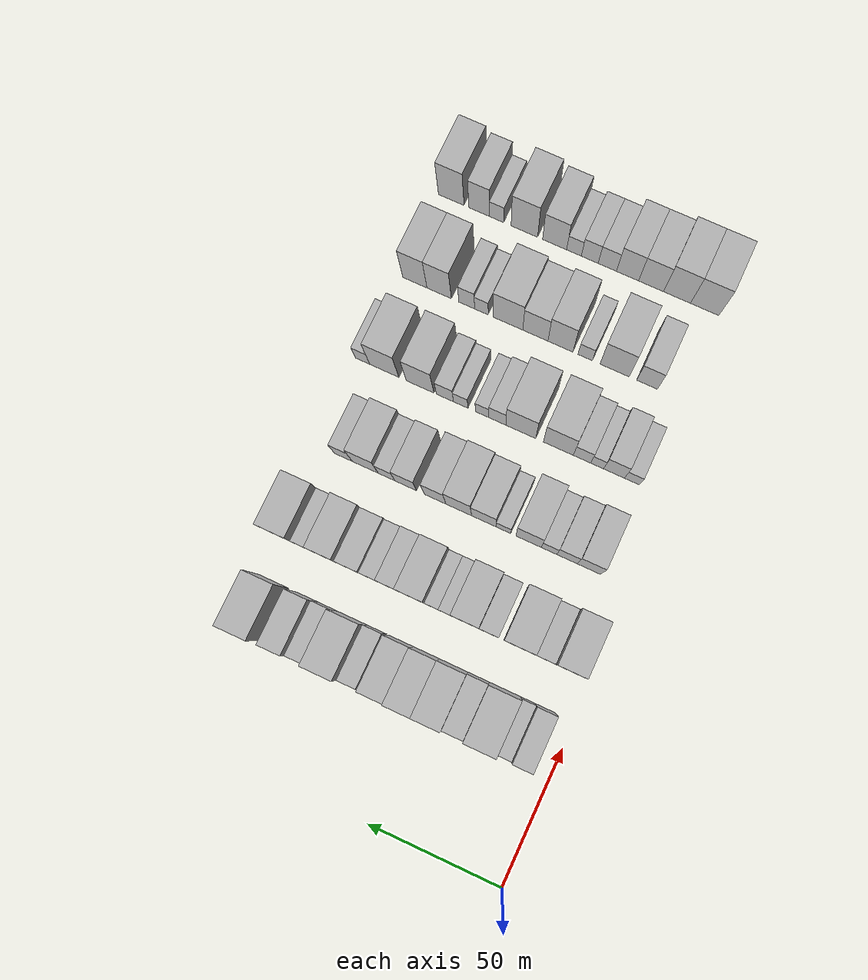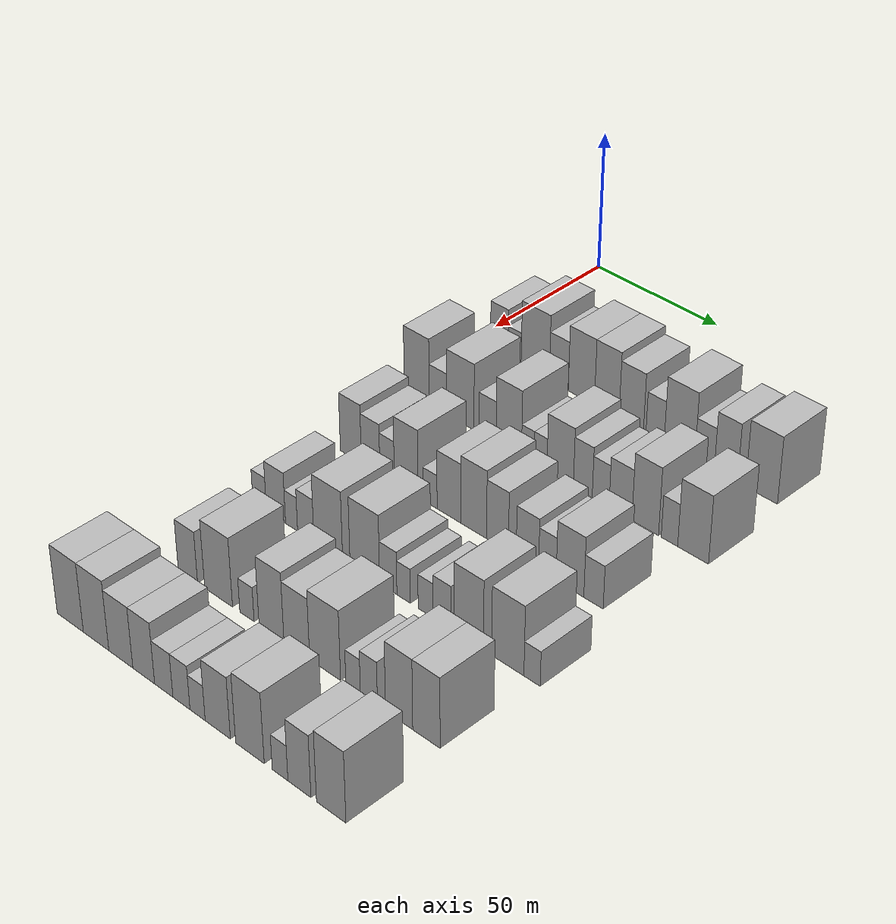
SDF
<sdf version="1.6">
 <world name="default">
  <model name="building_53">
   <static>1</static>
   <pose>50.0000 10.9325 0 0.000000 0.000000 0.000000</pose>
   <link name="link">
    <pose>0 0 9.00 0 0 0</pose>
    <collision name="collision"><geometry><box><size>20.0000 7.5967 18.0000</size></box></geometry></collision>
    <visual name="visual">
     <cast_shadows>0</cast_shadows>
     <geometry><box><size>20.0000 7.5967 18.0000</size></box></geometry>
     <material>
      <script>
       <uri>model://HANNAS_wall/materials/scripts</uri>
       <uri>model://HANNAS_wall/materials/textures</uri>
       <name>vrc/HANNAS_wall</name>
      </script>
     </material>
    </visual>
   </link>
  </model>
  <model name="building_54">
   <static>1</static>
   <pose>50.0000 17.5193 0 0.000000 0.000000 0.000000</pose>
   <link name="link">
    <pose>0 0 6.00 0 0 0</pose>
    <collision name="collision"><geometry><box><size>20.0000 5.5769 12.0000</size></box></geometry></collision>
    <visual name="visual">
     <cast_shadows>0</cast_shadows>
     <geometry><box><size>20.0000 5.5769 12.0000</size></box></geometry>
     <material>
      <script>
       <uri>model://HANNAS_wall/materials/scripts</uri>
       <uri>model://HANNAS_wall/materials/textures</uri>
       <name>vrc/HANNAS_wall</name>
      </script>
     </material>
    </visual>
   </link>
  </model>
  <model name="building_55">
   <static>1</static>
   <pose>50.0000 26.2541 0 0.000000 0.000000 0.000000</pose>
   <link name="link">
    <pose>0 0 12.00 0 0 0</pose>
    <collision name="collision"><geometry><box><size>20.0000 11.8926 24.0000</size></box></geometry></collision>
    <visual name="visual">
     <cast_shadows>0</cast_shadows>
     <geometry><box><size>20.0000 11.8926 24.0000</size></box></geometry>
     <material>
      <script>
       <uri>model://HANNAS_wall/materials/scripts</uri>
       <uri>model://HANNAS_wall/materials/textures</uri>
       <name>vrc/HANNAS_wall</name>
      </script>
     </material>
    </visual>
   </link>
  </model>
  <model name="building_56">
   <static>1</static>
   <pose>50.0000 36.1380 0 0.000000 0.000000 0.000000</pose>
   <link name="link">
    <pose>0 0 9.00 0 0 0</pose>
    <collision name="collision"><geometry><box><size>20.0000 7.8752 18.0000</size></box></geometry></collision>
    <visual name="visual">
     <cast_shadows>0</cast_shadows>
     <geometry><box><size>20.0000 7.8752 18.0000</size></box></geometry>
     <material>
      <script>
       <uri>model://HANNAS_wall/materials/scripts</uri>
       <uri>model://HANNAS_wall/materials/textures</uri>
       <name>vrc/HANNAS_wall</name>
      </script>
     </material>
    </visual>
   </link>
  </model>
  <model name="building_57">
   <static>1</static>
   <pose>50.0000 45.4287 0 0.000000 0.000000 0.000000</pose>
   <link name="link">
    <pose>0 0 12.00 0 0 0</pose>
    <collision name="collision"><geometry><box><size>20.0000 10.7063 24.0000</size></box></geometry></collision>
    <visual name="visual">
     <cast_shadows>0</cast_shadows>
     <geometry><box><size>20.0000 10.7063 24.0000</size></box></geometry>
     <material>
      <script>
       <uri>model://HANNAS_wall/materials/scripts</uri>
       <uri>model://HANNAS_wall/materials/textures</uri>
       <name>vrc/HANNAS_wall</name>
      </script>
     </material>
    </visual>
   </link>
  </model>
  <model name="building_58">
   <static>1</static>
   <pose>50.0000 55.7547 0 0.000000 0.000000 0.000000</pose>
   <link name="link">
    <pose>0 0 12.00 0 0 0</pose>
    <collision name="collision"><geometry><box><size>20.0000 9.9456 24.0000</size></box></geometry></collision>
    <visual name="visual">
     <cast_shadows>0</cast_shadows>
     <geometry><box><size>20.0000 9.9456 24.0000</size></box></geometry>
     <material>
      <script>
       <uri>model://HANNAS_wall/materials/scripts</uri>
       <uri>model://HANNAS_wall/materials/textures</uri>
       <name>vrc/HANNAS_wall</name>
      </script>
     </material>
    </visual>
   </link>
  </model>
  <model name="building_59">
   <static>1</static>
   <pose>50.0000 65.5780 0 0.000000 0.000000 0.000000</pose>
   <link name="link">
    <pose>0 0 10.50 0 0 0</pose>
    <collision name="collision"><geometry><box><size>20.0000 9.7010 21.0000</size></box></geometry></collision>
    <visual name="visual">
     <cast_shadows>0</cast_shadows>
     <geometry><box><size>20.0000 9.7010 21.0000</size></box></geometry>
     <material>
      <script>
       <uri>model://HANNAS_wall/materials/scripts</uri>
       <uri>model://HANNAS_wall/materials/textures</uri>
       <name>vrc/HANNAS_wall</name>
      </script>
     </material>
    </visual>
   </link>
  </model>
  <model name="building_60">
   <static>1</static>
   <pose>50.0000 74.9894 0 0.000000 0.000000 0.000000</pose>
   <link name="link">
    <pose>0 0 7.50 0 0 0</pose>
    <collision name="collision"><geometry><box><size>20.0000 7.1218 15.0000</size></box></geometry></collision>
    <visual name="visual">
     <cast_shadows>0</cast_shadows>
     <geometry><box><size>20.0000 7.1218 15.0000</size></box></geometry>
     <material>
      <script>
       <uri>model://HANNAS_wall/materials/scripts</uri>
       <uri>model://HANNAS_wall/materials/textures</uri>
       <name>vrc/HANNAS_wall</name>
      </script>
     </material>
    </visual>
   </link>
  </model>
  <model name="building_61">
   <static>1</static>
   <pose>50.0000 84.4552 0 0.000000 0.000000 0.000000</pose>
   <link name="link">
    <pose>0 0 12.00 0 0 0</pose>
    <collision name="collision"><geometry><box><size>20.0000 11.8098 24.0000</size></box></geometry></collision>
    <visual name="visual">
     <cast_shadows>0</cast_shadows>
     <geometry><box><size>20.0000 11.8098 24.0000</size></box></geometry>
     <material>
      <script>
       <uri>model://HANNAS_wall/materials/scripts</uri>
       <uri>model://HANNAS_wall/materials/textures</uri>
       <name>vrc/HANNAS_wall</name>
      </script>
     </material>
    </visual>
   </link>
  </model>
  <model name="building_62">
   <static>1</static>
   <pose>50.0000 94.0692 0 0.000000 0.000000 0.000000</pose>
   <link name="link">
    <pose>0 0 7.50 0 0 0</pose>
    <collision name="collision"><geometry><box><size>20.0000 7.4182 15.0000</size></box></geometry></collision>
    <visual name="visual">
     <cast_shadows>0</cast_shadows>
     <geometry><box><size>20.0000 7.4182 15.0000</size></box></geometry>
     <material>
      <script>
       <uri>model://HANNAS_wall/materials/scripts</uri>
       <uri>model://HANNAS_wall/materials/textures</uri>
       <name>vrc/HANNAS_wall</name>
      </script>
     </material>
    </visual>
   </link>
  </model>
  <model name="building_63">
   <static>1</static>
   <pose>50.0000 102.1355 0 0.000000 0.000000 0.000000</pose>
   <link name="link">
    <pose>0 0 10.50 0 0 0</pose>
    <collision name="collision"><geometry><box><size>20.0000 8.7144 21.0000</size></box></geometry></collision>
    <visual name="visual">
     <cast_shadows>0</cast_shadows>
     <geometry><box><size>20.0000 8.7144 21.0000</size></box></geometry>
     <material>
      <script>
       <uri>model://HANNAS_wall/materials/scripts</uri>
       <uri>model://HANNAS_wall/materials/textures</uri>
       <name>vrc/HANNAS_wall</name>
      </script>
     </material>
    </visual>
   </link>
  </model>
  <model name="building_64">
   <static>1</static>
   <pose>50.0000 115.3629 0 0.000000 0.000000 0.000000</pose>
   <link name="link">
    <pose>0 0 12.00 0 0 0</pose>
    <collision name="collision"><geometry><box><size>20.0000 11.7403 24.0000</size></box></geometry></collision>
    <visual name="visual">
     <cast_shadows>0</cast_shadows>
     <geometry><box><size>20.0000 11.7403 24.0000</size></box></geometry>
     <material>
      <script>
       <uri>model://HANNAS_wall/materials/scripts</uri>
       <uri>model://HANNAS_wall/materials/textures</uri>
       <name>vrc/HANNAS_wall</name>
      </script>
     </material>
    </visual>
   </link>
  </model>
  <model name="building_173">
   <static>1</static>
   <pose>85.0000 9.2073 0 0.000000 0.000000 0.000000</pose>
   <link name="link">
    <pose>0 0 12.00 0 0 0</pose>
    <collision name="collision"><geometry><box><size>20.0000 10.7106 24.0000</size></box></geometry></collision>
    <visual name="visual">
     <cast_shadows>0</cast_shadows>
     <geometry><box><size>20.0000 10.7106 24.0000</size></box></geometry>
     <material>
      <script>
       <uri>model://HANNAS_wall/materials/scripts</uri>
       <uri>model://HANNAS_wall/materials/textures</uri>
       <name>vrc/HANNAS_wall</name>
      </script>
     </material>
    </visual>
   </link>
  </model>
  <model name="building_174">
   <static>1</static>
   <pose>85.0000 18.2733 0 0.000000 0.000000 0.000000</pose>
   <link name="link">
    <pose>0 0 7.50 0 0 0</pose>
    <collision name="collision"><geometry><box><size>20.0000 7.4213 15.0000</size></box></geometry></collision>
    <visual name="visual">
     <cast_shadows>0</cast_shadows>
     <geometry><box><size>20.0000 7.4213 15.0000</size></box></geometry>
     <material>
      <script>
       <uri>model://HANNAS_wall/materials/scripts</uri>
       <uri>model://HANNAS_wall/materials/textures</uri>
       <name>vrc/HANNAS_wall</name>
      </script>
     </material>
    </visual>
   </link>
  </model>
  <model name="building_175">
   <static>1</static>
   <pose>85.0000 27.7374 0 0.000000 0.000000 0.000000</pose>
   <link name="link">
    <pose>0 0 12.00 0 0 0</pose>
    <collision name="collision"><geometry><box><size>20.0000 11.5070 24.0000</size></box></geometry></collision>
    <visual name="visual">
     <cast_shadows>0</cast_shadows>
     <geometry><box><size>20.0000 11.5070 24.0000</size></box></geometry>
     <material>
      <script>
       <uri>model://HANNAS_wall/materials/scripts</uri>
       <uri>model://HANNAS_wall/materials/textures</uri>
       <name>vrc/HANNAS_wall</name>
      </script>
     </material>
    </visual>
   </link>
  </model>
  <model name="building_176">
   <static>1</static>
   <pose>85.0000 39.0629 0 0.000000 0.000000 0.000000</pose>
   <link name="link">
    <pose>0 0 7.50 0 0 0</pose>
    <collision name="collision"><geometry><box><size>20.0000 7.1439 15.0000</size></box></geometry></collision>
    <visual name="visual">
     <cast_shadows>0</cast_shadows>
     <geometry><box><size>20.0000 7.1439 15.0000</size></box></geometry>
     <material>
      <script>
       <uri>model://HANNAS_wall/materials/scripts</uri>
       <uri>model://HANNAS_wall/materials/textures</uri>
       <name>vrc/HANNAS_wall</name>
      </script>
     </material>
    </visual>
   </link>
  </model>
  <model name="building_177">
   <static>1</static>
   <pose>85.0000 47.8035 0 0.000000 0.000000 0.000000</pose>
   <link name="link">
    <pose>0 0 12.00 0 0 0</pose>
    <collision name="collision"><geometry><box><size>20.0000 10.3373 24.0000</size></box></geometry></collision>
    <visual name="visual">
     <cast_shadows>0</cast_shadows>
     <geometry><box><size>20.0000 10.3373 24.0000</size></box></geometry>
     <material>
      <script>
       <uri>model://HANNAS_wall/materials/scripts</uri>
       <uri>model://HANNAS_wall/materials/textures</uri>
       <name>vrc/HANNAS_wall</name>
      </script>
     </material>
    </visual>
   </link>
  </model>
  <model name="building_178">
   <static>1</static>
   <pose>85.0000 55.4896 0 0.000000 0.000000 0.000000</pose>
   <link name="link">
    <pose>0 0 6.00 0 0 0</pose>
    <collision name="collision"><geometry><box><size>20.0000 5.0350 12.0000</size></box></geometry></collision>
    <visual name="visual">
     <cast_shadows>0</cast_shadows>
     <geometry><box><size>20.0000 5.0350 12.0000</size></box></geometry>
     <material>
      <script>
       <uri>model://HANNAS_wall/materials/scripts</uri>
       <uri>model://HANNAS_wall/materials/textures</uri>
       <name>vrc/HANNAS_wall</name>
      </script>
     </material>
    </visual>
   </link>
  </model>
  <model name="building_179">
   <static>1</static>
   <pose>85.0000 60.5890 0 0.000000 0.000000 0.000000</pose>
   <link name="link">
    <pose>0 0 6.00 0 0 0</pose>
    <collision name="collision"><geometry><box><size>20.0000 5.1638 12.0000</size></box></geometry></collision>
    <visual name="visual">
     <cast_shadows>0</cast_shadows>
     <geometry><box><size>20.0000 5.1638 12.0000</size></box></geometry>
     <material>
      <script>
       <uri>model://HANNAS_wall/materials/scripts</uri>
       <uri>model://HANNAS_wall/materials/textures</uri>
       <name>vrc/HANNAS_wall</name>
      </script>
     </material>
    </visual>
   </link>
  </model>
  <model name="building_180">
   <static>1</static>
   <pose>85.0000 68.3815 0 0.000000 0.000000 0.000000</pose>
   <link name="link">
    <pose>0 0 10.50 0 0 0</pose>
    <collision name="collision"><geometry><box><size>20.0000 10.4212 21.0000</size></box></geometry></collision>
    <visual name="visual">
     <cast_shadows>0</cast_shadows>
     <geometry><box><size>20.0000 10.4212 21.0000</size></box></geometry>
     <material>
      <script>
       <uri>model://HANNAS_wall/materials/scripts</uri>
       <uri>model://HANNAS_wall/materials/textures</uri>
       <name>vrc/HANNAS_wall</name>
      </script>
     </material>
    </visual>
   </link>
  </model>
  <model name="building_181">
   <static>1</static>
   <pose>85.0000 77.2573 0 0.000000 0.000000 0.000000</pose>
   <link name="link">
    <pose>0 0 9.00 0 0 0</pose>
    <collision name="collision"><geometry><box><size>20.0000 7.3304 18.0000</size></box></geometry></collision>
    <visual name="visual">
     <cast_shadows>0</cast_shadows>
     <geometry><box><size>20.0000 7.3304 18.0000</size></box></geometry>
     <material>
      <script>
       <uri>model://HANNAS_wall/materials/scripts</uri>
       <uri>model://HANNAS_wall/materials/textures</uri>
       <name>vrc/HANNAS_wall</name>
      </script>
     </material>
    </visual>
   </link>
  </model>
  <model name="building_182">
   <static>1</static>
   <pose>85.0000 84.1642 0 0.000000 0.000000 0.000000</pose>
   <link name="link">
    <pose>0 0 7.50 0 0 0</pose>
    <collision name="collision"><geometry><box><size>20.0000 6.4835 15.0000</size></box></geometry></collision>
    <visual name="visual">
     <cast_shadows>0</cast_shadows>
     <geometry><box><size>20.0000 6.4835 15.0000</size></box></geometry>
     <material>
      <script>
       <uri>model://HANNAS_wall/materials/scripts</uri>
       <uri>model://HANNAS_wall/materials/textures</uri>
       <name>vrc/HANNAS_wall</name>
      </script>
     </material>
    </visual>
   </link>
  </model>
  <model name="building_183">
   <static>1</static>
   <pose>85.0000 91.7483 0 0.000000 0.000000 0.000000</pose>
   <link name="link">
    <pose>0 0 9.00 0 0 0</pose>
    <collision name="collision"><geometry><box><size>20.0000 8.6847 18.0000</size></box></geometry></collision>
    <visual name="visual">
     <cast_shadows>0</cast_shadows>
     <geometry><box><size>20.0000 8.6847 18.0000</size></box></geometry>
     <material>
      <script>
       <uri>model://HANNAS_wall/materials/scripts</uri>
       <uri>model://HANNAS_wall/materials/textures</uri>
       <name>vrc/HANNAS_wall</name>
      </script>
     </material>
    </visual>
   </link>
  </model>
  <model name="building_184">
   <static>1</static>
   <pose>85.0000 101.0694 0 0.000000 0.000000 0.000000</pose>
   <link name="link">
    <pose>0 0 12.00 0 0 0</pose>
    <collision name="collision"><geometry><box><size>20.0000 9.9575 24.0000</size></box></geometry></collision>
    <visual name="visual">
     <cast_shadows>0</cast_shadows>
     <geometry><box><size>20.0000 9.9575 24.0000</size></box></geometry>
     <material>
      <script>
       <uri>model://HANNAS_wall/materials/scripts</uri>
       <uri>model://HANNAS_wall/materials/textures</uri>
       <name>vrc/HANNAS_wall</name>
      </script>
     </material>
    </visual>
   </link>
  </model>
  <model name="building_185">
   <static>1</static>
   <pose>85.0000 110.0752 0 0.000000 0.000000 0.000000</pose>
   <link name="link">
    <pose>0 0 7.50 0 0 0</pose>
    <collision name="collision"><geometry><box><size>20.0000 6.0540 15.0000</size></box></geometry></collision>
    <visual name="visual">
     <cast_shadows>0</cast_shadows>
     <geometry><box><size>20.0000 6.0540 15.0000</size></box></geometry>
     <material>
      <script>
       <uri>model://HANNAS_wall/materials/scripts</uri>
       <uri>model://HANNAS_wall/materials/textures</uri>
       <name>vrc/HANNAS_wall</name>
      </script>
     </material>
    </visual>
   </link>
  </model>
  <model name="building_186">
   <static>1</static>
   <pose>85.0000 118.7053 0 0.000000 0.000000 0.000000</pose>
   <link name="link">
    <pose>0 0 12.00 0 0 0</pose>
    <collision name="collision"><geometry><box><size>20.0000 11.2061 24.0000</size></box></geometry></collision>
    <visual name="visual">
     <cast_shadows>0</cast_shadows>
     <geometry><box><size>20.0000 11.2061 24.0000</size></box></geometry>
     <material>
      <script>
       <uri>model://HANNAS_wall/materials/scripts</uri>
       <uri>model://HANNAS_wall/materials/textures</uri>
       <name>vrc/HANNAS_wall</name>
      </script>
     </material>
    </visual>
   </link>
  </model>
  <model name="building_297">
   <static>1</static>
   <pose>120.0000 16.6069 0 0.000000 0.000000 0.000000</pose>
   <link name="link">
    <pose>0 0 10.50 0 0 0</pose>
    <collision name="collision"><geometry><box><size>20.0000 8.9394 21.0000</size></box></geometry></collision>
    <visual name="visual">
     <cast_shadows>0</cast_shadows>
     <geometry><box><size>20.0000 8.9394 21.0000</size></box></geometry>
     <material>
      <script>
       <uri>model://HANNAS_wall/materials/scripts</uri>
       <uri>model://HANNAS_wall/materials/textures</uri>
       <name>vrc/HANNAS_wall</name>
      </script>
     </material>
    </visual>
   </link>
  </model>
  <model name="building_298">
   <static>1</static>
   <pose>120.0000 24.9876 0 0.000000 0.000000 0.000000</pose>
   <link name="link">
    <pose>0 0 9.00 0 0 0</pose>
    <collision name="collision"><geometry><box><size>20.0000 7.8220 18.0000</size></box></geometry></collision>
    <visual name="visual">
     <cast_shadows>0</cast_shadows>
     <geometry><box><size>20.0000 7.8220 18.0000</size></box></geometry>
     <material>
      <script>
       <uri>model://HANNAS_wall/materials/scripts</uri>
       <uri>model://HANNAS_wall/materials/textures</uri>
       <name>vrc/HANNAS_wall</name>
      </script>
     </material>
    </visual>
   </link>
  </model>
  <model name="building_299">
   <static>1</static>
   <pose>120.0000 31.9144 0 0.000000 0.000000 0.000000</pose>
   <link name="link">
    <pose>0 0 7.50 0 0 0</pose>
    <collision name="collision"><geometry><box><size>20.0000 6.0315 15.0000</size></box></geometry></collision>
    <visual name="visual">
     <cast_shadows>0</cast_shadows>
     <geometry><box><size>20.0000 6.0315 15.0000</size></box></geometry>
     <material>
      <script>
       <uri>model://HANNAS_wall/materials/scripts</uri>
       <uri>model://HANNAS_wall/materials/textures</uri>
       <name>vrc/HANNAS_wall</name>
      </script>
     </material>
    </visual>
   </link>
  </model>
  <model name="building_300">
   <static>1</static>
   <pose>120.0000 39.8131 0 0.000000 0.000000 0.000000</pose>
   <link name="link">
    <pose>0 0 12.00 0 0 0</pose>
    <collision name="collision"><geometry><box><size>20.0000 9.7660 24.0000</size></box></geometry></collision>
    <visual name="visual">
     <cast_shadows>0</cast_shadows>
     <geometry><box><size>20.0000 9.7660 24.0000</size></box></geometry>
     <material>
      <script>
       <uri>model://HANNAS_wall/materials/scripts</uri>
       <uri>model://HANNAS_wall/materials/textures</uri>
       <name>vrc/HANNAS_wall</name>
      </script>
     </material>
    </visual>
   </link>
  </model>
  <model name="building_301">
   <static>1</static>
   <pose>120.0000 49.5465 0 0.000000 0.000000 0.000000</pose>
   <link name="link">
    <pose>0 0 6.00 0 0 0</pose>
    <collision name="collision"><geometry><box><size>20.0000 5.7008 12.0000</size></box></geometry></collision>
    <visual name="visual">
     <cast_shadows>0</cast_shadows>
     <geometry><box><size>20.0000 5.7008 12.0000</size></box></geometry>
     <material>
      <script>
       <uri>model://HANNAS_wall/materials/scripts</uri>
       <uri>model://HANNAS_wall/materials/textures</uri>
       <name>vrc/HANNAS_wall</name>
      </script>
     </material>
    </visual>
   </link>
  </model>
  <model name="building_302">
   <static>1</static>
   <pose>120.0000 57.1615 0 0.000000 0.000000 0.000000</pose>
   <link name="link">
    <pose>0 0 10.50 0 0 0</pose>
    <collision name="collision"><geometry><box><size>20.0000 9.5293 21.0000</size></box></geometry></collision>
    <visual name="visual">
     <cast_shadows>0</cast_shadows>
     <geometry><box><size>20.0000 9.5293 21.0000</size></box></geometry>
     <material>
      <script>
       <uri>model://HANNAS_wall/materials/scripts</uri>
       <uri>model://HANNAS_wall/materials/textures</uri>
       <name>vrc/HANNAS_wall</name>
      </script>
     </material>
    </visual>
   </link>
  </model>
  <model name="building_303">
   <static>1</static>
   <pose>120.0000 66.9779 0 0.000000 0.000000 0.000000</pose>
   <link name="link">
    <pose>0 0 12.00 0 0 0</pose>
    <collision name="collision"><geometry><box><size>20.0000 10.1033 24.0000</size></box></geometry></collision>
    <visual name="visual">
     <cast_shadows>0</cast_shadows>
     <geometry><box><size>20.0000 10.1033 24.0000</size></box></geometry>
     <material>
      <script>
       <uri>model://HANNAS_wall/materials/scripts</uri>
       <uri>model://HANNAS_wall/materials/textures</uri>
       <name>vrc/HANNAS_wall</name>
      </script>
     </material>
    </visual>
   </link>
  </model>
  <model name="building_304">
   <static>1</static>
   <pose>120.0000 76.2631 0 0.000000 0.000000 0.000000</pose>
   <link name="link">
    <pose>0 0 10.50 0 0 0</pose>
    <collision name="collision"><geometry><box><size>20.0000 8.4672 21.0000</size></box></geometry></collision>
    <visual name="visual">
     <cast_shadows>0</cast_shadows>
     <geometry><box><size>20.0000 8.4672 21.0000</size></box></geometry>
     <material>
      <script>
       <uri>model://HANNAS_wall/materials/scripts</uri>
       <uri>model://HANNAS_wall/materials/textures</uri>
       <name>vrc/HANNAS_wall</name>
      </script>
     </material>
    </visual>
   </link>
  </model>
  <model name="building_305">
   <static>1</static>
   <pose>120.0000 87.7587 0 0.000000 0.000000 0.000000</pose>
   <link name="link">
    <pose>0 0 9.00 0 0 0</pose>
    <collision name="collision"><geometry><box><size>20.0000 8.5241 18.0000</size></box></geometry></collision>
    <visual name="visual">
     <cast_shadows>0</cast_shadows>
     <geometry><box><size>20.0000 8.5241 18.0000</size></box></geometry>
     <material>
      <script>
       <uri>model://HANNAS_wall/materials/scripts</uri>
       <uri>model://HANNAS_wall/materials/textures</uri>
       <name>vrc/HANNAS_wall</name>
      </script>
     </material>
    </visual>
   </link>
  </model>
  <model name="building_306">
   <static>1</static>
   <pose>120.0000 95.3101 0 0.000000 0.000000 0.000000</pose>
   <link name="link">
    <pose>0 0 7.50 0 0 0</pose>
    <collision name="collision"><geometry><box><size>20.0000 6.5787 15.0000</size></box></geometry></collision>
    <visual name="visual">
     <cast_shadows>0</cast_shadows>
     <geometry><box><size>20.0000 6.5787 15.0000</size></box></geometry>
     <material>
      <script>
       <uri>model://HANNAS_wall/materials/scripts</uri>
       <uri>model://HANNAS_wall/materials/textures</uri>
       <name>vrc/HANNAS_wall</name>
      </script>
     </material>
    </visual>
   </link>
  </model>
  <model name="building_307">
   <static>1</static>
   <pose>120.0000 103.7476 0 0.000000 0.000000 0.000000</pose>
   <link name="link">
    <pose>0 0 10.50 0 0 0</pose>
    <collision name="collision"><geometry><box><size>20.0000 10.2961 21.0000</size></box></geometry></collision>
    <visual name="visual">
     <cast_shadows>0</cast_shadows>
     <geometry><box><size>20.0000 10.2961 21.0000</size></box></geometry>
     <material>
      <script>
       <uri>model://HANNAS_wall/materials/scripts</uri>
       <uri>model://HANNAS_wall/materials/textures</uri>
       <name>vrc/HANNAS_wall</name>
      </script>
     </material>
    </visual>
   </link>
  </model>
  <model name="building_308">
   <static>1</static>
   <pose>120.0000 112.4360 0 0.000000 0.000000 0.000000</pose>
   <link name="link">
    <pose>0 0 7.50 0 0 0</pose>
    <collision name="collision"><geometry><box><size>20.0000 7.0806 15.0000</size></box></geometry></collision>
    <visual name="visual">
     <cast_shadows>0</cast_shadows>
     <geometry><box><size>20.0000 7.0806 15.0000</size></box></geometry>
     <material>
      <script>
       <uri>model://HANNAS_wall/materials/scripts</uri>
       <uri>model://HANNAS_wall/materials/textures</uri>
       <name>vrc/HANNAS_wall</name>
      </script>
     </material>
    </visual>
   </link>
  </model>
  <model name="building_413">
   <static>1</static>
   <pose>155.0000 15.1623 0 0.000000 0.000000 0.000000</pose>
   <link name="link">
    <pose>0 0 6.00 0 0 0</pose>
    <collision name="collision"><geometry><box><size>20.0000 5.7543 12.0000</size></box></geometry></collision>
    <visual name="visual">
     <cast_shadows>0</cast_shadows>
     <geometry><box><size>20.0000 5.7543 12.0000</size></box></geometry>
     <material>
      <script>
       <uri>model://HANNAS_wall/materials/scripts</uri>
       <uri>model://HANNAS_wall/materials/textures</uri>
       <name>vrc/HANNAS_wall</name>
      </script>
     </material>
    </visual>
   </link>
  </model>
  <model name="building_414">
   <static>1</static>
   <pose>155.0000 22.1017 0 0.000000 0.000000 0.000000</pose>
   <link name="link">
    <pose>0 0 9.00 0 0 0</pose>
    <collision name="collision"><geometry><box><size>20.0000 8.1246 18.0000</size></box></geometry></collision>
    <visual name="visual">
     <cast_shadows>0</cast_shadows>
     <geometry><box><size>20.0000 8.1246 18.0000</size></box></geometry>
     <material>
      <script>
       <uri>model://HANNAS_wall/materials/scripts</uri>
       <uri>model://HANNAS_wall/materials/textures</uri>
       <name>vrc/HANNAS_wall</name>
      </script>
     </material>
    </visual>
   </link>
  </model>
  <model name="building_415">
   <static>1</static>
   <pose>155.0000 28.6937 0 0.000000 0.000000 0.000000</pose>
   <link name="link">
    <pose>0 0 6.00 0 0 0</pose>
    <collision name="collision"><geometry><box><size>20.0000 5.0593 12.0000</size></box></geometry></collision>
    <visual name="visual">
     <cast_shadows>0</cast_shadows>
     <geometry><box><size>20.0000 5.0593 12.0000</size></box></geometry>
     <material>
      <script>
       <uri>model://HANNAS_wall/materials/scripts</uri>
       <uri>model://HANNAS_wall/materials/textures</uri>
       <name>vrc/HANNAS_wall</name>
      </script>
     </material>
    </visual>
   </link>
  </model>
  <model name="building_416">
   <static>1</static>
   <pose>155.0000 34.6225 0 0.000000 0.000000 0.000000</pose>
   <link name="link">
    <pose>0 0 7.50 0 0 0</pose>
    <collision name="collision"><geometry><box><size>20.0000 6.7983 15.0000</size></box></geometry></collision>
    <visual name="visual">
     <cast_shadows>0</cast_shadows>
     <geometry><box><size>20.0000 6.7983 15.0000</size></box></geometry>
     <material>
      <script>
       <uri>model://HANNAS_wall/materials/scripts</uri>
       <uri>model://HANNAS_wall/materials/textures</uri>
       <name>vrc/HANNAS_wall</name>
      </script>
     </material>
    </visual>
   </link>
  </model>
  <model name="building_417">
   <static>1</static>
   <pose>155.0000 43.8873 0 0.000000 0.000000 0.000000</pose>
   <link name="link">
    <pose>0 0 12.00 0 0 0</pose>
    <collision name="collision"><geometry><box><size>20.0000 11.7314 24.0000</size></box></geometry></collision>
    <visual name="visual">
     <cast_shadows>0</cast_shadows>
     <geometry><box><size>20.0000 11.7314 24.0000</size></box></geometry>
     <material>
      <script>
       <uri>model://HANNAS_wall/materials/scripts</uri>
       <uri>model://HANNAS_wall/materials/textures</uri>
       <name>vrc/HANNAS_wall</name>
      </script>
     </material>
    </visual>
   </link>
  </model>
  <model name="building_418">
   <static>1</static>
   <pose>155.0000 58.6644 0 0.000000 0.000000 0.000000</pose>
   <link name="link">
    <pose>0 0 12.00 0 0 0</pose>
    <collision name="collision"><geometry><box><size>20.0000 11.8228 24.0000</size></box></geometry></collision>
    <visual name="visual">
     <cast_shadows>0</cast_shadows>
     <geometry><box><size>20.0000 11.8228 24.0000</size></box></geometry>
     <material>
      <script>
       <uri>model://HANNAS_wall/materials/scripts</uri>
       <uri>model://HANNAS_wall/materials/textures</uri>
       <name>vrc/HANNAS_wall</name>
      </script>
     </material>
    </visual>
   </link>
  </model>
  <model name="building_419">
   <static>1</static>
   <pose>155.0000 67.9554 0 0.000000 0.000000 0.000000</pose>
   <link name="link">
    <pose>0 0 7.50 0 0 0</pose>
    <collision name="collision"><geometry><box><size>20.0000 6.7591 15.0000</size></box></geometry></collision>
    <visual name="visual">
     <cast_shadows>0</cast_shadows>
     <geometry><box><size>20.0000 6.7591 15.0000</size></box></geometry>
     <material>
      <script>
       <uri>model://HANNAS_wall/materials/scripts</uri>
       <uri>model://HANNAS_wall/materials/textures</uri>
       <name>vrc/HANNAS_wall</name>
      </script>
     </material>
    </visual>
   </link>
  </model>
  <model name="building_420">
   <static>1</static>
   <pose>155.0000 73.9543 0 0.000000 0.000000 0.000000</pose>
   <link name="link">
    <pose>0 0 6.00 0 0 0</pose>
    <collision name="collision"><geometry><box><size>20.0000 5.2388 12.0000</size></box></geometry></collision>
    <visual name="visual">
     <cast_shadows>0</cast_shadows>
     <geometry><box><size>20.0000 5.2388 12.0000</size></box></geometry>
     <material>
      <script>
       <uri>model://HANNAS_wall/materials/scripts</uri>
       <uri>model://HANNAS_wall/materials/textures</uri>
       <name>vrc/HANNAS_wall</name>
      </script>
     </material>
    </visual>
   </link>
  </model>
  <model name="building_421">
   <static>1</static>
   <pose>155.0000 82.4547 0 0.000000 0.000000 0.000000</pose>
   <link name="link">
    <pose>0 0 6.00 0 0 0</pose>
    <collision name="collision"><geometry><box><size>20.0000 5.7619 12.0000</size></box></geometry></collision>
    <visual name="visual">
     <cast_shadows>0</cast_shadows>
     <geometry><box><size>20.0000 5.7619 12.0000</size></box></geometry>
     <material>
      <script>
       <uri>model://HANNAS_wall/materials/scripts</uri>
       <uri>model://HANNAS_wall/materials/textures</uri>
       <name>vrc/HANNAS_wall</name>
      </script>
     </material>
    </visual>
   </link>
  </model>
  <model name="building_422">
   <static>1</static>
   <pose>155.0000 88.7399 0 0.000000 0.000000 0.000000</pose>
   <link name="link">
    <pose>0 0 7.50 0 0 0</pose>
    <collision name="collision"><geometry><box><size>20.0000 6.8085 15.0000</size></box></geometry></collision>
    <visual name="visual">
     <cast_shadows>0</cast_shadows>
     <geometry><box><size>20.0000 6.8085 15.0000</size></box></geometry>
     <material>
      <script>
       <uri>model://HANNAS_wall/materials/scripts</uri>
       <uri>model://HANNAS_wall/materials/textures</uri>
       <name>vrc/HANNAS_wall</name>
      </script>
     </material>
    </visual>
   </link>
  </model>
  <model name="building_423">
   <static>1</static>
   <pose>155.0000 98.6700 0 0.000000 0.000000 0.000000</pose>
   <link name="link">
    <pose>0 0 12.00 0 0 0</pose>
    <collision name="collision"><geometry><box><size>20.0000 11.0516 24.0000</size></box></geometry></collision>
    <visual name="visual">
     <cast_shadows>0</cast_shadows>
     <geometry><box><size>20.0000 11.0516 24.0000</size></box></geometry>
     <material>
      <script>
       <uri>model://HANNAS_wall/materials/scripts</uri>
       <uri>model://HANNAS_wall/materials/textures</uri>
       <name>vrc/HANNAS_wall</name>
      </script>
     </material>
    </visual>
   </link>
  </model>
  <model name="building_424">
   <static>1</static>
   <pose>155.0000 113.0742 0 0.000000 0.000000 0.000000</pose>
   <link name="link">
    <pose>0 0 12.00 0 0 0</pose>
    <collision name="collision"><geometry><box><size>20.0000 11.7568 24.0000</size></box></geometry></collision>
    <visual name="visual">
     <cast_shadows>0</cast_shadows>
     <geometry><box><size>20.0000 11.7568 24.0000</size></box></geometry>
     <material>
      <script>
       <uri>model://HANNAS_wall/materials/scripts</uri>
       <uri>model://HANNAS_wall/materials/textures</uri>
       <name>vrc/HANNAS_wall</name>
      </script>
     </material>
    </visual>
   </link>
  </model>
  <model name="building_425">
   <static>1</static>
   <pose>155.0000 121.8730 0 0.000000 0.000000 0.000000</pose>
   <link name="link">
    <pose>0 0 6.00 0 0 0</pose>
    <collision name="collision"><geometry><box><size>20.0000 5.8407 12.0000</size></box></geometry></collision>
    <visual name="visual">
     <cast_shadows>0</cast_shadows>
     <geometry><box><size>20.0000 5.8407 12.0000</size></box></geometry>
     <material>
      <script>
       <uri>model://HANNAS_wall/materials/scripts</uri>
       <uri>model://HANNAS_wall/materials/textures</uri>
       <name>vrc/HANNAS_wall</name>
      </script>
     </material>
    </visual>
   </link>
  </model>
  <model name="building_543">
   <static>1</static>
   <pose>190.0000 24.2606 0 0.000000 0.000000 0.000000</pose>
   <link name="link">
    <pose>0 0 9.00 0 0 0</pose>
    <collision name="collision"><geometry><box><size>20.0000 8.1568 18.0000</size></box></geometry></collision>
    <visual name="visual">
     <cast_shadows>0</cast_shadows>
     <geometry><box><size>20.0000 8.1568 18.0000</size></box></geometry>
     <material>
      <script>
       <uri>model://HANNAS_wall/materials/scripts</uri>
       <uri>model://HANNAS_wall/materials/textures</uri>
       <name>vrc/HANNAS_wall</name>
      </script>
     </material>
    </visual>
   </link>
  </model>
  <model name="building_544">
   <static>1</static>
   <pose>190.0000 37.1027 0 0.000000 0.000000 0.000000</pose>
   <link name="link">
    <pose>0 0 12.00 0 0 0</pose>
    <collision name="collision"><geometry><box><size>20.0000 11.5274 24.0000</size></box></geometry></collision>
    <visual name="visual">
     <cast_shadows>0</cast_shadows>
     <geometry><box><size>20.0000 11.5274 24.0000</size></box></geometry>
     <material>
      <script>
       <uri>model://HANNAS_wall/materials/scripts</uri>
       <uri>model://HANNAS_wall/materials/textures</uri>
       <name>vrc/HANNAS_wall</name>
      </script>
     </material>
    </visual>
   </link>
  </model>
  <model name="building_545">
   <static>1</static>
   <pose>190.0000 48.7615 0 0.000000 0.000000 0.000000</pose>
   <link name="link">
    <pose>0 0 6.00 0 0 0</pose>
    <collision name="collision"><geometry><box><size>20.0000 5.7902 12.0000</size></box></geometry></collision>
    <visual name="visual">
     <cast_shadows>0</cast_shadows>
     <geometry><box><size>20.0000 5.7902 12.0000</size></box></geometry>
     <material>
      <script>
       <uri>model://HANNAS_wall/materials/scripts</uri>
       <uri>model://HANNAS_wall/materials/textures</uri>
       <name>vrc/HANNAS_wall</name>
      </script>
     </material>
    </visual>
   </link>
  </model>
  <model name="building_546">
   <static>1</static>
   <pose>190.0000 58.6334 0 0.000000 0.000000 0.000000</pose>
   <link name="link">
    <pose>0 0 12.00 0 0 0</pose>
    <collision name="collision"><geometry><box><size>20.0000 9.9536 24.0000</size></box></geometry></collision>
    <visual name="visual">
     <cast_shadows>0</cast_shadows>
     <geometry><box><size>20.0000 9.9536 24.0000</size></box></geometry>
     <material>
      <script>
       <uri>model://HANNAS_wall/materials/scripts</uri>
       <uri>model://HANNAS_wall/materials/textures</uri>
       <name>vrc/HANNAS_wall</name>
      </script>
     </material>
    </visual>
   </link>
  </model>
  <model name="building_547">
   <static>1</static>
   <pose>190.0000 68.6542 0 0.000000 0.000000 0.000000</pose>
   <link name="link">
    <pose>0 0 10.50 0 0 0</pose>
    <collision name="collision"><geometry><box><size>20.0000 10.0880 21.0000</size></box></geometry></collision>
    <visual name="visual">
     <cast_shadows>0</cast_shadows>
     <geometry><box><size>20.0000 10.0880 21.0000</size></box></geometry>
     <material>
      <script>
       <uri>model://HANNAS_wall/materials/scripts</uri>
       <uri>model://HANNAS_wall/materials/textures</uri>
       <name>vrc/HANNAS_wall</name>
      </script>
     </material>
    </visual>
   </link>
  </model>
  <model name="building_548">
   <static>1</static>
   <pose>190.0000 79.6599 0 0.000000 0.000000 0.000000</pose>
   <link name="link">
    <pose>0 0 12.00 0 0 0</pose>
    <collision name="collision"><geometry><box><size>20.0000 11.9235 24.0000</size></box></geometry></collision>
    <visual name="visual">
     <cast_shadows>0</cast_shadows>
     <geometry><box><size>20.0000 11.9235 24.0000</size></box></geometry>
     <material>
      <script>
       <uri>model://HANNAS_wall/materials/scripts</uri>
       <uri>model://HANNAS_wall/materials/textures</uri>
       <name>vrc/HANNAS_wall</name>
      </script>
     </material>
    </visual>
   </link>
  </model>
  <model name="building_549">
   <static>1</static>
   <pose>190.0000 90.3679 0 0.000000 0.000000 0.000000</pose>
   <link name="link">
    <pose>0 0 6.00 0 0 0</pose>
    <collision name="collision"><geometry><box><size>20.0000 5.4925 12.0000</size></box></geometry></collision>
    <visual name="visual">
     <cast_shadows>0</cast_shadows>
     <geometry><box><size>20.0000 5.4925 12.0000</size></box></geometry>
     <material>
      <script>
       <uri>model://HANNAS_wall/materials/scripts</uri>
       <uri>model://HANNAS_wall/materials/textures</uri>
       <name>vrc/HANNAS_wall</name>
      </script>
     </material>
    </visual>
   </link>
  </model>
  <model name="building_550">
   <static>1</static>
   <pose>190.0000 96.3111 0 0.000000 0.000000 0.000000</pose>
   <link name="link">
    <pose>0 0 7.50 0 0 0</pose>
    <collision name="collision"><geometry><box><size>20.0000 6.3938 15.0000</size></box></geometry></collision>
    <visual name="visual">
     <cast_shadows>0</cast_shadows>
     <geometry><box><size>20.0000 6.3938 15.0000</size></box></geometry>
     <material>
      <script>
       <uri>model://HANNAS_wall/materials/scripts</uri>
       <uri>model://HANNAS_wall/materials/textures</uri>
       <name>vrc/HANNAS_wall</name>
      </script>
     </material>
    </visual>
   </link>
  </model>
  <model name="building_551">
   <static>1</static>
   <pose>190.0000 107.4858 0 0.000000 0.000000 0.000000</pose>
   <link name="link">
    <pose>0 0 12.00 0 0 0</pose>
    <collision name="collision"><geometry><box><size>20.0000 9.9557 24.0000</size></box></geometry></collision>
    <visual name="visual">
     <cast_shadows>0</cast_shadows>
     <geometry><box><size>20.0000 9.9557 24.0000</size></box></geometry>
     <material>
      <script>
       <uri>model://HANNAS_wall/materials/scripts</uri>
       <uri>model://HANNAS_wall/materials/textures</uri>
       <name>vrc/HANNAS_wall</name>
      </script>
     </material>
    </visual>
   </link>
  </model>
  <model name="building_552">
   <static>1</static>
   <pose>190.0000 117.3971 0 0.000000 0.000000 0.000000</pose>
   <link name="link">
    <pose>0 0 12.00 0 0 0</pose>
    <collision name="collision"><geometry><box><size>20.0000 9.8668 24.0000</size></box></geometry></collision>
    <visual name="visual">
     <cast_shadows>0</cast_shadows>
     <geometry><box><size>20.0000 9.8668 24.0000</size></box></geometry>
     <material>
      <script>
       <uri>model://HANNAS_wall/materials/scripts</uri>
       <uri>model://HANNAS_wall/materials/textures</uri>
       <name>vrc/HANNAS_wall</name>
      </script>
     </material>
    </visual>
   </link>
  </model>
  <model name="building_670">
   <static>1</static>
   <pose>225.0000 16.2145 0 0.000000 0.000000 0.000000</pose>
   <link name="link">
    <pose>0 0 12.00 0 0 0</pose>
    <collision name="collision"><geometry><box><size>20.0000 11.2875 24.0000</size></box></geometry></collision>
    <visual name="visual">
     <cast_shadows>0</cast_shadows>
     <geometry><box><size>20.0000 11.2875 24.0000</size></box></geometry>
     <material>
      <script>
       <uri>model://HANNAS_wall/materials/scripts</uri>
       <uri>model://HANNAS_wall/materials/textures</uri>
       <name>vrc/HANNAS_wall</name>
      </script>
     </material>
    </visual>
   </link>
  </model>
  <model name="building_671">
   <static>1</static>
   <pose>225.0000 27.2447 0 0.000000 0.000000 0.000000</pose>
   <link name="link">
    <pose>0 0 12.00 0 0 0</pose>
    <collision name="collision"><geometry><box><size>20.0000 10.7729 24.0000</size></box></geometry></collision>
    <visual name="visual">
     <cast_shadows>0</cast_shadows>
     <geometry><box><size>20.0000 10.7729 24.0000</size></box></geometry>
     <material>
      <script>
       <uri>model://HANNAS_wall/materials/scripts</uri>
       <uri>model://HANNAS_wall/materials/textures</uri>
       <name>vrc/HANNAS_wall</name>
      </script>
     </material>
    </visual>
   </link>
  </model>
  <model name="building_672">
   <static>1</static>
   <pose>225.0000 37.6321 0 0.000000 0.000000 0.000000</pose>
   <link name="link">
    <pose>0 0 10.50 0 0 0</pose>
    <collision name="collision"><geometry><box><size>20.0000 10.0020 21.0000</size></box></geometry></collision>
    <visual name="visual">
     <cast_shadows>0</cast_shadows>
     <geometry><box><size>20.0000 10.0020 21.0000</size></box></geometry>
     <material>
      <script>
       <uri>model://HANNAS_wall/materials/scripts</uri>
       <uri>model://HANNAS_wall/materials/textures</uri>
       <name>vrc/HANNAS_wall</name>
      </script>
     </material>
    </visual>
   </link>
  </model>
  <model name="building_673">
   <static>1</static>
   <pose>225.0000 47.0960 0 0.000000 0.000000 0.000000</pose>
   <link name="link">
    <pose>0 0 10.50 0 0 0</pose>
    <collision name="collision"><geometry><box><size>20.0000 8.9259 21.0000</size></box></geometry></collision>
    <visual name="visual">
     <cast_shadows>0</cast_shadows>
     <geometry><box><size>20.0000 8.9259 21.0000</size></box></geometry>
     <material>
      <script>
       <uri>model://HANNAS_wall/materials/scripts</uri>
       <uri>model://HANNAS_wall/materials/textures</uri>
       <name>vrc/HANNAS_wall</name>
      </script>
     </material>
    </visual>
   </link>
  </model>
  <model name="building_674">
   <static>1</static>
   <pose>225.0000 55.2453 0 0.000000 0.000000 0.000000</pose>
   <link name="link">
    <pose>0 0 7.50 0 0 0</pose>
    <collision name="collision"><geometry><box><size>20.0000 7.3727 15.0000</size></box></geometry></collision>
    <visual name="visual">
     <cast_shadows>0</cast_shadows>
     <geometry><box><size>20.0000 7.3727 15.0000</size></box></geometry>
     <material>
      <script>
       <uri>model://HANNAS_wall/materials/scripts</uri>
       <uri>model://HANNAS_wall/materials/textures</uri>
       <name>vrc/HANNAS_wall</name>
      </script>
     </material>
    </visual>
   </link>
  </model>
  <model name="building_675">
   <static>1</static>
   <pose>225.0000 62.3264 0 0.000000 0.000000 0.000000</pose>
   <link name="link">
    <pose>0 0 7.50 0 0 0</pose>
    <collision name="collision"><geometry><box><size>20.0000 6.7895 15.0000</size></box></geometry></collision>
    <visual name="visual">
     <cast_shadows>0</cast_shadows>
     <geometry><box><size>20.0000 6.7895 15.0000</size></box></geometry>
     <material>
      <script>
       <uri>model://HANNAS_wall/materials/scripts</uri>
       <uri>model://HANNAS_wall/materials/textures</uri>
       <name>vrc/HANNAS_wall</name>
      </script>
     </material>
    </visual>
   </link>
  </model>
  <model name="building_676">
   <static>1</static>
   <pose>225.0000 68.7111 0 0.000000 0.000000 0.000000</pose>
   <link name="link">
    <pose>0 0 6.00 0 0 0</pose>
    <collision name="collision"><geometry><box><size>20.0000 5.9799 12.0000</size></box></geometry></collision>
    <visual name="visual">
     <cast_shadows>0</cast_shadows>
     <geometry><box><size>20.0000 5.9799 12.0000</size></box></geometry>
     <material>
      <script>
       <uri>model://HANNAS_wall/materials/scripts</uri>
       <uri>model://HANNAS_wall/materials/textures</uri>
       <name>vrc/HANNAS_wall</name>
      </script>
     </material>
    </visual>
   </link>
  </model>
  <model name="building_677">
   <static>1</static>
   <pose>225.0000 76.5965 0 0.000000 0.000000 0.000000</pose>
   <link name="link">
    <pose>0 0 10.50 0 0 0</pose>
    <collision name="collision"><geometry><box><size>20.0000 9.7907 21.0000</size></box></geometry></collision>
    <visual name="visual">
     <cast_shadows>0</cast_shadows>
     <geometry><box><size>20.0000 9.7907 21.0000</size></box></geometry>
     <material>
      <script>
       <uri>model://HANNAS_wall/materials/scripts</uri>
       <uri>model://HANNAS_wall/materials/textures</uri>
       <name>vrc/HANNAS_wall</name>
      </script>
     </material>
    </visual>
   </link>
  </model>
  <model name="building_678">
   <static>1</static>
   <pose>225.0000 88.9195 0 0.000000 0.000000 0.000000</pose>
   <link name="link">
    <pose>0 0 12.00 0 0 0</pose>
    <collision name="collision"><geometry><box><size>20.0000 10.8555 24.0000</size></box></geometry></collision>
    <visual name="visual">
     <cast_shadows>0</cast_shadows>
     <geometry><box><size>20.0000 10.8555 24.0000</size></box></geometry>
     <material>
      <script>
       <uri>model://HANNAS_wall/materials/scripts</uri>
       <uri>model://HANNAS_wall/materials/textures</uri>
       <name>vrc/HANNAS_wall</name>
      </script>
     </material>
    </visual>
   </link>
  </model>
  <model name="building_679">
   <static>1</static>
   <pose>225.0000 100.2625 0 0.000000 0.000000 0.000000</pose>
   <link name="link">
    <pose>0 0 6.00 0 0 0</pose>
    <collision name="collision"><geometry><box><size>20.0000 5.8305 12.0000</size></box></geometry></collision>
    <visual name="visual">
     <cast_shadows>0</cast_shadows>
     <geometry><box><size>20.0000 5.8305 12.0000</size></box></geometry>
     <material>
      <script>
       <uri>model://HANNAS_wall/materials/scripts</uri>
       <uri>model://HANNAS_wall/materials/textures</uri>
       <name>vrc/HANNAS_wall</name>
      </script>
     </material>
    </visual>
   </link>
  </model>
  <model name="building_680">
   <static>1</static>
   <pose>225.0000 107.4029 0 0.000000 0.000000 0.000000</pose>
   <link name="link">
    <pose>0 0 10.50 0 0 0</pose>
    <collision name="collision"><geometry><box><size>20.0000 8.4502 21.0000</size></box></geometry></collision>
    <visual name="visual">
     <cast_shadows>0</cast_shadows>
     <geometry><box><size>20.0000 8.4502 21.0000</size></box></geometry>
     <material>
      <script>
       <uri>model://HANNAS_wall/materials/scripts</uri>
       <uri>model://HANNAS_wall/materials/textures</uri>
       <name>vrc/HANNAS_wall</name>
      </script>
     </material>
    </visual>
   </link>
  </model>
  <model name="building_681">
   <static>1</static>
   <pose>225.0000 118.9209 0 0.000000 0.000000 0.000000</pose>
   <link name="link">
    <pose>0 0 12.00 0 0 0</pose>
    <collision name="collision"><geometry><box><size>20.0000 10.5856 24.0000</size></box></geometry></collision>
    <visual name="visual">
     <cast_shadows>0</cast_shadows>
     <geometry><box><size>20.0000 10.5856 24.0000</size></box></geometry>
     <material>
      <script>
       <uri>model://HANNAS_wall/materials/scripts</uri>
       <uri>model://HANNAS_wall/materials/textures</uri>
       <name>vrc/HANNAS_wall</name>
      </script>
     </material>
    </visual>
   </link>
  </model>
 </world>
</sdf>
